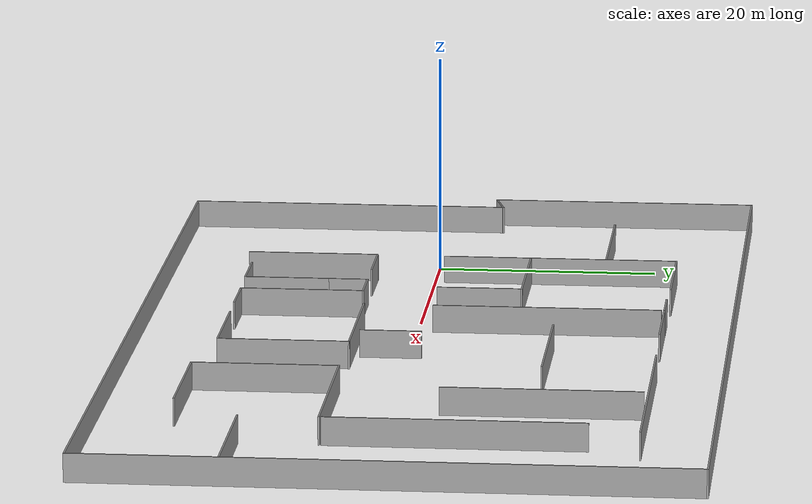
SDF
<?xml version='1.0'?>
<sdf version='1.6'>
  <model name='Untitled'>
    <pose frame=''>27.7538 1.85746 0 0 -0 0</pose>
    <link name='Wall_0'>
      <collision name='Wall_0_Collision'>
        <geometry>
          <box>
            <size>29.5 0.15 2.5</size>
          </box>
        </geometry>
        <pose frame=''>0 0 1.25 0 -0 0</pose>
      </collision>
      <visual name='Wall_0_Visual'>
        <pose frame=''>0 0 1.25 0 -0 0</pose>
        <geometry>
          <box>
            <size>29.5 0.15 2.5</size>
          </box>
        </geometry>
        <material>
          <script>
            <uri>file://media/materials/scripts/gazebo.material</uri>
            <name>Gazebo/Grey</name>
          </script>
          <ambient>1 1 1 1</ambient>
        </material>
        <meta>
          <layer>0</layer>
        </meta>
      </visual>
      <pose frame=''>-42.1666 -11.75 0 0 -0 -1.5708</pose>
    </link>
    <link name='Wall_1'>
      <collision name='Wall_1_Collision'>
        <geometry>
          <box>
            <size>87.5 0.15 2.5</size>
          </box>
        </geometry>
        <pose frame=''>0 0 1.25 0 -0 0</pose>
      </collision>
      <visual name='Wall_1_Visual'>
        <pose frame=''>0 0 1.25 0 -0 0</pose>
        <geometry>
          <box>
            <size>87.5 0.15 2.5</size>
          </box>
        </geometry>
        <material>
          <script>
            <uri>file://media/materials/scripts/gazebo.material</uri>
            <name>Gazebo/Grey</name>
          </script>
          <ambient>1 1 1 1</ambient>
        </material>
        <meta>
          <layer>0</layer>
        </meta>
      </visual>
      <pose frame=''>1.50842 -26.425 0 0 -0 0</pose>
    </link>
    <link name='Wall_10'>
      <collision name='Wall_10_Collision'>
        <geometry>
          <box>
            <size>7.75 0.15 2.5</size>
          </box>
        </geometry>
        <pose frame=''>0 0 1.25 0 -0 0</pose>
      </collision>
      <visual name='Wall_10_Visual'>
        <pose frame=''>0 0 1.25 0 -0 0</pose>
        <geometry>
          <box>
            <size>7.75 0.15 2.5</size>
          </box>
        </geometry>
        <material>
          <script>
            <uri>file://media/materials/scripts/gazebo.material</uri>
            <name>Gazebo/Grey</name>
          </script>
          <ambient>1 1 1 1</ambient>
        </material>
        <meta>
          <layer>0</layer>
        </meta>
      </visual>
      <pose frame=''>-11.5381 3.15382 0 0 -0 -1.5708</pose>
    </link>
    <link name='Wall_12'>
      <collision name='Wall_12_Collision'>
        <geometry>
          <box>
            <size>20.5 0.15 2.5</size>
          </box>
        </geometry>
        <pose frame=''>0 0 1.25 0 -0 0</pose>
      </collision>
      <visual name='Wall_12_Visual'>
        <pose frame=''>0 0 1.25 0 -0 0</pose>
        <geometry>
          <box>
            <size>20.5 0.15 2.5</size>
          </box>
        </geometry>
        <material>
          <script>
            <uri>file://media/materials/scripts/gazebo.material</uri>
            <name>Gazebo/Grey</name>
          </script>
          <ambient>1 1 1 1</ambient>
        </material>
        <meta>
          <layer>0</layer>
        </meta>
      </visual>
      <pose frame=''>-5.0679 9.71675 0 0 -0 -1.5708</pose>
    </link>
    <link name='Wall_14'>
      <collision name='Wall_14_Collision'>
        <geometry>
          <box>
            <size>10.5 0.15 2.5</size>
          </box>
        </geometry>
        <pose frame=''>0 0 1.25 0 -0 0</pose>
      </collision>
      <visual name='Wall_14_Visual'>
        <pose frame=''>0 0 1.25 0 -0 0</pose>
        <geometry>
          <box>
            <size>10.5 0.15 2.5</size>
          </box>
        </geometry>
        <material>
          <script>
            <uri>file://media/materials/scripts/gazebo.material</uri>
            <name>Gazebo/Grey</name>
          </script>
          <ambient>1 1 1 1</ambient>
        </material>
        <meta>
          <layer>0</layer>
        </meta>
      </visual>
      <pose frame=''>-17.7131 20.38 0 0 -0 0</pose>
    </link>
    <link name='Wall_16'>
      <collision name='Wall_16_Collision'>
        <geometry>
          <box>
            <size>4 0.15 2.5</size>
          </box>
        </geometry>
        <pose frame=''>0 0 1.25 0 -0 0</pose>
      </collision>
      <visual name='Wall_16_Visual'>
        <pose frame=''>0 0 1.25 0 -0 0</pose>
        <geometry>
          <box>
            <size>4 0.15 2.5</size>
          </box>
        </geometry>
        <material>
          <script>
            <uri>file://media/materials/scripts/gazebo.material</uri>
            <name>Gazebo/Grey</name>
          </script>
          <ambient>1 1 1 1</ambient>
        </material>
        <meta>
          <layer>0</layer>
        </meta>
      </visual>
      <pose frame=''>-6.99289 20.2172 0 0 -0 3.14159</pose>
    </link>
    <link name='Wall_18'>
      <collision name='Wall_18_Collision'>
        <geometry>
          <box>
            <size>12 0.15 2.5</size>
          </box>
        </geometry>
        <pose frame=''>0 0 1.25 0 -0 0</pose>
      </collision>
      <visual name='Wall_18_Visual'>
        <pose frame=''>0 0 1.25 0 -0 0</pose>
        <geometry>
          <box>
            <size>12 0.15 2.5</size>
          </box>
        </geometry>
        <material>
          <script>
            <uri>file://media/materials/scripts/gazebo.material</uri>
            <name>Gazebo/Grey</name>
          </script>
          <ambient>1 1 1 1</ambient>
        </material>
        <meta>
          <layer>0</layer>
        </meta>
      </visual>
      <pose frame=''>-23.0038 -13.1969 0 0 -0 1.5708</pose>
    </link>
    <link name='Wall_19'>
      <collision name='Wall_19_Collision'>
        <geometry>
          <box>
            <size>5.75 0.15 2.5</size>
          </box>
        </geometry>
        <pose frame=''>0 0 1.25 0 -0 0</pose>
      </collision>
      <visual name='Wall_19_Visual'>
        <pose frame=''>0 0 1.25 0 -0 0</pose>
        <geometry>
          <box>
            <size>5.75 0.15 2.5</size>
          </box>
        </geometry>
        <material>
          <script>
            <uri>file://media/materials/scripts/gazebo.material</uri>
            <name>Gazebo/Grey</name>
          </script>
          <ambient>1 1 1 1</ambient>
        </material>
        <meta>
          <layer>0</layer>
        </meta>
      </visual>
      <pose frame=''>-20.2038 -7.27194 0 0 -0 0</pose>
    </link>
    <link name='Wall_2'>
      <collision name='Wall_2_Collision'>
        <geometry>
          <box>
            <size>53 0.15 2.5</size>
          </box>
        </geometry>
        <pose frame=''>0 0 1.25 0 -0 0</pose>
      </collision>
      <visual name='Wall_2_Visual'>
        <pose frame=''>0 0 1.25 0 -0 0</pose>
        <geometry>
          <box>
            <size>53 0.15 2.5</size>
          </box>
        </geometry>
        <material>
          <script>
            <uri>file://media/materials/scripts/gazebo.material</uri>
            <name>Gazebo/Grey</name>
          </script>
          <ambient>1 1 1 1</ambient>
        </material>
        <meta>
          <layer>0</layer>
        </meta>
      </visual>
      <pose frame=''>45.1834 -0 0 0 -0 1.5708</pose>
    </link>
    <link name='Wall_21'>
      <collision name='Wall_21_Collision'>
        <geometry>
          <box>
            <size>5.5 0.15 2.5</size>
          </box>
        </geometry>
        <pose frame=''>0 0 1.25 0 -0 0</pose>
      </collision>
      <visual name='Wall_21_Visual'>
        <pose frame=''>0 0 1.25 0 -0 0</pose>
        <geometry>
          <box>
            <size>5.5 0.15 2.5</size>
          </box>
        </geometry>
        <material>
          <script>
            <uri>file://media/materials/scripts/gazebo.material</uri>
            <name>Gazebo/Grey</name>
          </script>
          <ambient>1 1 1 1</ambient>
        </material>
        <meta>
          <layer>0</layer>
        </meta>
      </visual>
      <pose frame=''>-16.4371 -18.4851 0 0 -0 0</pose>
    </link>
    <link name='Wall_22'>
      <collision name='Wall_22_Collision'>
        <geometry>
          <box>
            <size>7.75 0.15 2.5</size>
          </box>
        </geometry>
        <pose frame=''>0 0 1.25 0 -0 0</pose>
      </collision>
      <visual name='Wall_22_Visual'>
        <pose frame=''>0 0 1.25 0 -0 0</pose>
        <geometry>
          <box>
            <size>7.75 0.15 2.5</size>
          </box>
        </geometry>
        <material>
          <script>
            <uri>file://media/materials/scripts/gazebo.material</uri>
            <name>Gazebo/Grey</name>
          </script>
          <ambient>1 1 1 1</ambient>
        </material>
        <meta>
          <layer>0</layer>
        </meta>
      </visual>
      <pose frame=''>-13.7621 -14.6851 0 0 -0 1.5708</pose>
    </link>
    <link name='Wall_23'>
      <collision name='Wall_23_Collision'>
        <geometry>
          <box>
            <size>3.75 0.15 2.5</size>
          </box>
        </geometry>
        <pose frame=''>0 0 1.25 0 -0 0</pose>
      </collision>
      <visual name='Wall_23_Visual'>
        <pose frame=''>0 0 1.25 0 -0 0</pose>
        <geometry>
          <box>
            <size>3.75 0.15 2.5</size>
          </box>
        </geometry>
        <material>
          <script>
            <uri>file://media/materials/scripts/gazebo.material</uri>
            <name>Gazebo/Grey</name>
          </script>
          <ambient>1 1 1 1</ambient>
        </material>
        <meta>
          <layer>0</layer>
        </meta>
      </visual>
      <pose frame=''>-13.7621 -9.08512 0 0 -0 1.5708</pose>
    </link>
    <link name='Wall_24'>
      <collision name='Wall_24_Collision'>
        <geometry>
          <box>
            <size>4.25 0.15 2.5</size>
          </box>
        </geometry>
        <pose frame=''>0 0 1.25 0 -0 0</pose>
      </collision>
      <visual name='Wall_24_Visual'>
        <pose frame=''>0 0 1.25 0 -0 0</pose>
        <geometry>
          <box>
            <size>4.25 0.15 2.5</size>
          </box>
        </geometry>
        <material>
          <script>
            <uri>file://media/materials/scripts/gazebo.material</uri>
            <name>Gazebo/Grey</name>
          </script>
          <ambient>1 1 1 1</ambient>
        </material>
        <meta>
          <layer>0</layer>
        </meta>
      </visual>
      <pose frame=''>-11.7121 -7.28512 0 0 -0 0</pose>
    </link>
    <link name='Wall_25'>
      <collision name='Wall_25_Collision'>
        <geometry>
          <box>
            <size>11.25 0.15 2.5</size>
          </box>
        </geometry>
        <pose frame=''>0 0 1.25 0 -0 0</pose>
      </collision>
      <visual name='Wall_25_Visual'>
        <pose frame=''>0 0 1.25 0 -0 0</pose>
        <geometry>
          <box>
            <size>11.25 0.15 2.5</size>
          </box>
        </geometry>
        <material>
          <script>
            <uri>file://media/materials/scripts/gazebo.material</uri>
            <name>Gazebo/Grey</name>
          </script>
          <ambient>1 1 1 1</ambient>
        </material>
        <meta>
          <layer>0</layer>
        </meta>
      </visual>
      <pose frame=''>-9.66214 -12.8351 0 0 -0 -1.5708</pose>
    </link>
    <link name='Wall_26'>
      <collision name='Wall_26_Collision'>
        <geometry>
          <box>
            <size>5.25 0.15 2.5</size>
          </box>
        </geometry>
        <pose frame=''>0 0 1.25 0 -0 0</pose>
      </collision>
      <visual name='Wall_26_Visual'>
        <pose frame=''>0 0 1.25 0 -0 0</pose>
        <geometry>
          <box>
            <size>5.25 0.15 2.5</size>
          </box>
        </geometry>
        <material>
          <script>
            <uri>file://media/materials/scripts/gazebo.material</uri>
            <name>Gazebo/Grey</name>
          </script>
          <ambient>1 1 1 1</ambient>
        </material>
        <meta>
          <layer>0</layer>
        </meta>
      </visual>
      <pose frame=''>-7.11214 -18.3851 0 0 -0 0</pose>
    </link>
    <link name='Wall_28'>
      <collision name='Wall_28_Collision'>
        <geometry>
          <box>
            <size>9.5 0.15 2.5</size>
          </box>
        </geometry>
        <pose frame=''>0 0 1.25 0 -0 0</pose>
      </collision>
      <visual name='Wall_28_Visual'>
        <pose frame=''>0 0 1.25 0 -0 0</pose>
        <geometry>
          <box>
            <size>9.5 0.15 2.5</size>
          </box>
        </geometry>
        <material>
          <script>
            <uri>file://media/materials/scripts/gazebo.material</uri>
            <name>Gazebo/Grey</name>
          </script>
          <ambient>1 1 1 1</ambient>
        </material>
        <meta>
          <layer>0</layer>
        </meta>
      </visual>
      <pose frame=''>3.32288 -18.3436 0 0 -0 0</pose>
    </link>
    <link name='Wall_29'>
      <collision name='Wall_29_Collision'>
        <geometry>
          <box>
            <size>11.75 0.15 2.5</size>
          </box>
        </geometry>
        <pose frame=''>0 0 1.25 0 -0 0</pose>
      </collision>
      <visual name='Wall_29_Visual'>
        <pose frame=''>0 0 1.25 0 -0 0</pose>
        <geometry>
          <box>
            <size>11.75 0.15 2.5</size>
          </box>
        </geometry>
        <material>
          <script>
            <uri>file://media/materials/scripts/gazebo.material</uri>
            <name>Gazebo/Grey</name>
          </script>
          <ambient>1 1 1 1</ambient>
        </material>
        <meta>
          <layer>0</layer>
        </meta>
      </visual>
      <pose frame=''>7.99788 -12.5436 0 0 -0 1.5708</pose>
    </link>
    <link name='Wall_3'>
      <collision name='Wall_3_Collision'>
        <geometry>
          <box>
            <size>90.5 0.15 2.5</size>
          </box>
        </geometry>
        <pose frame=''>0 0 1.25 0 -0 0</pose>
      </collision>
      <visual name='Wall_3_Visual'>
        <pose frame=''>0 0 1.25 0 -0 0</pose>
        <geometry>
          <box>
            <size>90.5 0.15 2.5</size>
          </box>
        </geometry>
        <material>
          <script>
            <uri>file://media/materials/scripts/gazebo.material</uri>
            <name>Gazebo/Grey</name>
          </script>
          <ambient>1 1 1 1</ambient>
        </material>
        <meta>
          <layer>0</layer>
        </meta>
      </visual>
      <pose frame=''>0.008425 26.425 0 0 -0 3.14159</pose>
    </link>
    <link name='Wall_30'>
      <collision name='Wall_30_Collision'>
        <geometry>
          <box>
            <size>13.25 0.15 2.5</size>
          </box>
        </geometry>
        <pose frame=''>0 0 1.25 0 -0 0</pose>
      </collision>
      <visual name='Wall_30_Visual'>
        <pose frame=''>0 0 1.25 0 -0 0</pose>
        <geometry>
          <box>
            <size>13.25 0.15 2.5</size>
          </box>
        </geometry>
        <material>
          <script>
            <uri>file://media/materials/scripts/gazebo.material</uri>
            <name>Gazebo/Grey</name>
          </script>
          <ambient>1 1 1 1</ambient>
        </material>
        <meta>
          <layer>0</layer>
        </meta>
      </visual>
      <pose frame=''>1.44788 -6.74361 0 0 -0 3.14159</pose>
    </link>
    <link name='Wall_32'>
      <collision name='Wall_32_Collision'>
        <geometry>
          <box>
            <size>5.5 0.15 2.5</size>
          </box>
        </geometry>
        <pose frame=''>0 0 1.25 0 -0 0</pose>
      </collision>
      <visual name='Wall_32_Visual'>
        <pose frame=''>0 0 1.25 0 -0 0</pose>
        <geometry>
          <box>
            <size>5.5 0.15 2.5</size>
          </box>
        </geometry>
        <material>
          <script>
            <uri>file://media/materials/scripts/gazebo.material</uri>
            <name>Gazebo/Grey</name>
          </script>
          <ambient>1 1 1 1</ambient>
        </material>
        <meta>
          <layer>0</layer>
        </meta>
      </visual>
      <pose frame=''>4.02634 -3.45319 0 0 -0 1.5708</pose>
    </link>
    <link name='Wall_34'>
      <collision name='Wall_34_Collision'>
        <geometry>
          <box>
            <size>8.5 0.15 2.5</size>
          </box>
        </geometry>
        <pose frame=''>0 0 1.25 0 -0 0</pose>
      </collision>
      <visual name='Wall_34_Visual'>
        <pose frame=''>0 0 1.25 0 -0 0</pose>
        <geometry>
          <box>
            <size>8.5 0.15 2.5</size>
          </box>
        </geometry>
        <material>
          <script>
            <uri>file://media/materials/scripts/gazebo.material</uri>
            <name>Gazebo/Grey</name>
          </script>
          <ambient>1 1 1 1</ambient>
        </material>
        <meta>
          <layer>0</layer>
        </meta>
      </visual>
      <pose frame=''>-0.892895 20.2172 0 0 -0 0</pose>
    </link>
    <link name='Wall_36'>
      <collision name='Wall_36_Collision'>
        <geometry>
          <box>
            <size>24.5 0.15 2.5</size>
          </box>
        </geometry>
        <pose frame=''>0 0 1.25 0 -0 0</pose>
      </collision>
      <visual name='Wall_36_Visual'>
        <pose frame=''>0 0 1.25 0 -0 0</pose>
        <geometry>
          <box>
            <size>24.5 0.15 2.5</size>
          </box>
        </geometry>
        <material>
          <script>
            <uri>file://media/materials/scripts/gazebo.material</uri>
            <name>Gazebo/Grey</name>
          </script>
          <ambient>1 1 1 1</ambient>
        </material>
        <meta>
          <layer>0</layer>
        </meta>
      </visual>
      <pose frame=''>22.4196 20.32 0 0 -0 0</pose>
    </link>
    <link name='Wall_38'>
      <collision name='Wall_38_Collision'>
        <geometry>
          <box>
            <size>17.5 0.15 2.5</size>
          </box>
        </geometry>
        <pose frame=''>0 0 1.25 0 -0 0</pose>
      </collision>
      <visual name='Wall_38_Visual'>
        <pose frame=''>0 0 1.25 0 -0 0</pose>
        <geometry>
          <box>
            <size>17.5 0.15 2.5</size>
          </box>
        </geometry>
        <material>
          <script>
            <uri>file://media/materials/scripts/gazebo.material</uri>
            <name>Gazebo/Grey</name>
          </script>
          <ambient>1 1 1 1</ambient>
        </material>
        <meta>
          <layer>0</layer>
        </meta>
      </visual>
      <pose frame=''>22.2223 11.2156 0 0 -0 1.5708</pose>
    </link>
    <link name='Wall_4'>
      <collision name='Wall_4_Collision'>
        <geometry>
          <box>
            <size>24.5 0.15 2.5</size>
          </box>
        </geometry>
        <pose frame=''>0 0 1.25 0 -0 0</pose>
      </collision>
      <visual name='Wall_4_Visual'>
        <pose frame=''>0 0 1.25 0 -0 0</pose>
        <geometry>
          <box>
            <size>24.5 0.15 2.5</size>
          </box>
        </geometry>
        <material>
          <script>
            <uri>file://media/materials/scripts/gazebo.material</uri>
            <name>Gazebo/Grey</name>
          </script>
          <ambient>1 1 1 1</ambient>
        </material>
        <meta>
          <layer>0</layer>
        </meta>
      </visual>
      <pose frame=''>-45.1666 14.25 0 0 -0 -1.5708</pose>
    </link>
    <link name='Wall_40'>
      <collision name='Wall_40_Collision'>
        <geometry>
          <box>
            <size>14.25 0.15 2.5</size>
          </box>
        </geometry>
        <pose frame=''>0 0 1.25 0 -0 0</pose>
      </collision>
      <visual name='Wall_40_Visual'>
        <pose frame=''>0 0 1.25 0 -0 0</pose>
        <geometry>
          <box>
            <size>14.25 0.15 2.5</size>
          </box>
        </geometry>
        <material>
          <script>
            <uri>file://media/materials/scripts/gazebo.material</uri>
            <name>Gazebo/Grey</name>
          </script>
          <ambient>1 1 1 1</ambient>
        </material>
        <meta>
          <layer>0</layer>
        </meta>
      </visual>
      <pose frame=''>7.74978 10.6817 0 0 -0 0</pose>
    </link>
    <link name='Wall_43'>
      <collision name='Wall_43_Collision'>
        <geometry>
          <box>
            <size>16.5 0.15 2.5</size>
          </box>
        </geometry>
        <pose frame=''>0 0 1.25 0 -0 0</pose>
      </collision>
      <visual name='Wall_43_Visual'>
        <pose frame=''>0 0 1.25 0 -0 0</pose>
        <geometry>
          <box>
            <size>16.5 0.15 2.5</size>
          </box>
        </geometry>
        <material>
          <script>
            <uri>file://media/materials/scripts/gazebo.material</uri>
            <name>Gazebo/Grey</name>
          </script>
          <ambient>1 1 1 1</ambient>
        </material>
        <meta>
          <layer>0</layer>
        </meta>
      </visual>
      <pose frame=''>24.2471 -6.77856 0 0 -0 3.14159</pose>
    </link>
    <link name='Wall_44'>
      <collision name='Wall_44_Collision'>
        <geometry>
          <box>
            <size>13 0.15 2.5</size>
          </box>
        </geometry>
        <pose frame=''>0 0 1.25 0 -0 0</pose>
      </collision>
      <visual name='Wall_44_Visual'>
        <pose frame=''>0 0 1.25 0 -0 0</pose>
        <geometry>
          <box>
            <size>13 0.15 2.5</size>
          </box>
        </geometry>
        <material>
          <script>
            <uri>file://media/materials/scripts/gazebo.material</uri>
            <name>Gazebo/Grey</name>
          </script>
          <ambient>1 1 1 1</ambient>
        </material>
        <meta>
          <layer>0</layer>
        </meta>
      </visual>
      <pose frame=''>16.0721 -13.2036 0 0 -0 -1.5708</pose>
    </link>
    <link name='Wall_45'>
      <collision name='Wall_45_Collision'>
        <geometry>
          <box>
            <size>11.75 0.15 2.5</size>
          </box>
        </geometry>
        <pose frame=''>0 0 1.25 0 -0 0</pose>
      </collision>
      <visual name='Wall_45_Visual'>
        <pose frame=''>0 0 1.25 0 -0 0</pose>
        <geometry>
          <box>
            <size>11.75 0.15 2.5</size>
          </box>
        </geometry>
        <material>
          <script>
            <uri>file://media/materials/scripts/gazebo.material</uri>
            <name>Gazebo/Grey</name>
          </script>
          <ambient>1 1 1 1</ambient>
        </material>
        <meta>
          <layer>0</layer>
        </meta>
      </visual>
      <pose frame=''>21.8721 -19.6286 0 0 -0 0</pose>
    </link>
    <link name='Wall_47'>
      <collision name='Wall_47_Collision'>
        <geometry>
          <box>
            <size>12.75 0.15 2.5</size>
          </box>
        </geometry>
        <pose frame=''>0 0 1.25 0 -0 0</pose>
      </collision>
      <visual name='Wall_47_Visual'>
        <pose frame=''>0 0 1.25 0 -0 0</pose>
        <geometry>
          <box>
            <size>12.75 0.15 2.5</size>
          </box>
        </geometry>
        <material>
          <script>
            <uri>file://media/materials/scripts/gazebo.material</uri>
            <name>Gazebo/Grey</name>
          </script>
          <ambient>1 1 1 1</ambient>
        </material>
        <meta>
          <layer>0</layer>
        </meta>
      </visual>
      <pose frame=''>38.8157 -13.6481 0 0 -0 0</pose>
    </link>
    <link name='Wall_49'>
      <collision name='Wall_49_Collision'>
        <geometry>
          <box>
            <size>22.5 0.15 2.5</size>
          </box>
        </geometry>
        <pose frame=''>0 0 1.25 0 -0 0</pose>
      </collision>
      <visual name='Wall_49_Visual'>
        <pose frame=''>0 0 1.25 0 -0 0</pose>
        <geometry>
          <box>
            <size>22.5 0.15 2.5</size>
          </box>
        </geometry>
        <material>
          <script>
            <uri>file://media/materials/scripts/gazebo.material</uri>
            <name>Gazebo/Grey</name>
          </script>
          <ambient>1 1 1 1</ambient>
        </material>
        <meta>
          <layer>0</layer>
        </meta>
      </visual>
      <pose frame=''>32.3905 4.65613 0 0 -0 1.5708</pose>
    </link>
    <link name='Wall_5'>
      <collision name='Wall_5_Collision'>
        <geometry>
          <box>
            <size>3.25 0.15 2.5</size>
          </box>
        </geometry>
        <pose frame=''>0 0 1.25 0 -0 0</pose>
      </collision>
      <visual name='Wall_5_Visual'>
        <pose frame=''>0 0 1.25 0 -0 0</pose>
        <geometry>
          <box>
            <size>3.25 0.15 2.5</size>
          </box>
        </geometry>
        <material>
          <script>
            <uri>file://media/materials/scripts/gazebo.material</uri>
            <name>Gazebo/Grey</name>
          </script>
          <ambient>1 1 1 1</ambient>
        </material>
        <meta>
          <layer>0</layer>
        </meta>
      </visual>
      <pose frame=''>-43.6694 2.47617 0 0 -0 0.261799</pose>
    </link>
    <link name='Wall_52'>
      <collision name='Wall_52_Collision'>
        <geometry>
          <box>
            <size>13.5 0.15 2.5</size>
          </box>
        </geometry>
        <pose frame=''>0 0 1.25 0 -0 0</pose>
      </collision>
      <visual name='Wall_52_Visual'>
        <pose frame=''>0 0 1.25 0 -0 0</pose>
        <geometry>
          <box>
            <size>13.5 0.15 2.5</size>
          </box>
        </geometry>
        <material>
          <script>
            <uri>file://media/materials/scripts/gazebo.material</uri>
            <name>Gazebo/Grey</name>
          </script>
          <ambient>1 1 1 1</ambient>
        </material>
        <meta>
          <layer>0</layer>
        </meta>
      </visual>
      <pose frame=''>-29.6183 13.8997 0 0 -0 0</pose>
    </link>
    <link name='Wall_7'>
      <collision name='Wall_7_Collision'>
        <geometry>
          <box>
            <size>21.5 0.15 2.5</size>
          </box>
        </geometry>
        <pose frame=''>0 0 1.25 0 -0 0</pose>
      </collision>
      <visual name='Wall_7_Visual'>
        <pose frame=''>0 0 1.25 0 -0 0</pose>
        <geometry>
          <box>
            <size>21.5 0.15 2.5</size>
          </box>
        </geometry>
        <material>
          <script>
            <uri>file://media/materials/scripts/gazebo.material</uri>
            <name>Gazebo/Grey</name>
          </script>
          <ambient>1 1 1 1</ambient>
        </material>
        <meta>
          <layer>0</layer>
        </meta>
      </visual>
      <pose frame=''>-22.8881 9.70497 0 0 -0 -1.5708</pose>
    </link>
    <link name='Wall_9'>
      <collision name='Wall_9_Collision'>
        <geometry>
          <box>
            <size>11.5 0.15 2.5</size>
          </box>
        </geometry>
        <pose frame=''>0 0 1.25 0 -0 0</pose>
      </collision>
      <visual name='Wall_9_Visual'>
        <pose frame=''>0 0 1.25 0 -0 0</pose>
        <geometry>
          <box>
            <size>11.5 0.15 2.5</size>
          </box>
        </geometry>
        <material>
          <script>
            <uri>file://media/materials/scripts/gazebo.material</uri>
            <name>Gazebo/Grey</name>
          </script>
          <ambient>1 1 1 1</ambient>
        </material>
        <meta>
          <layer>0</layer>
        </meta>
      </visual>
      <pose frame=''>-17.2131 6.95382 0 0 -0 0</pose>
    </link>
    <static>1</static>
  </model>
</sdf>
